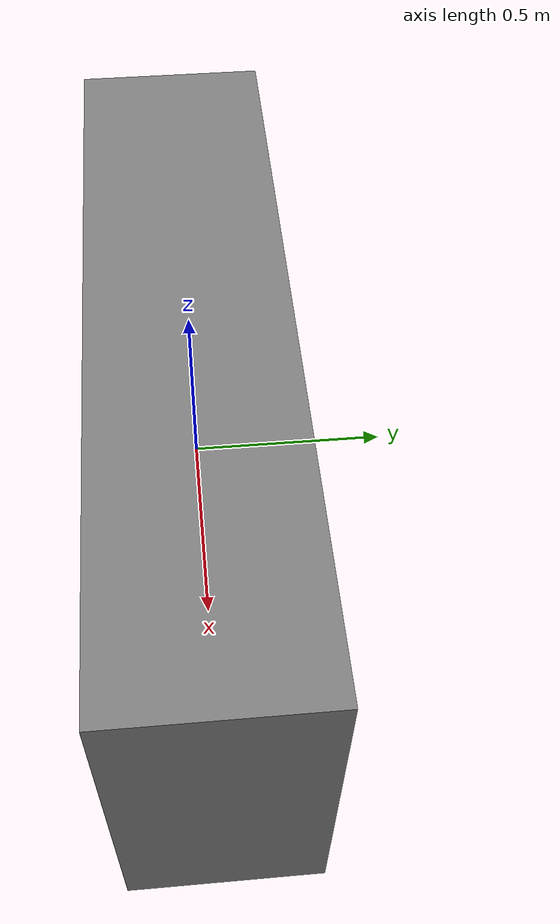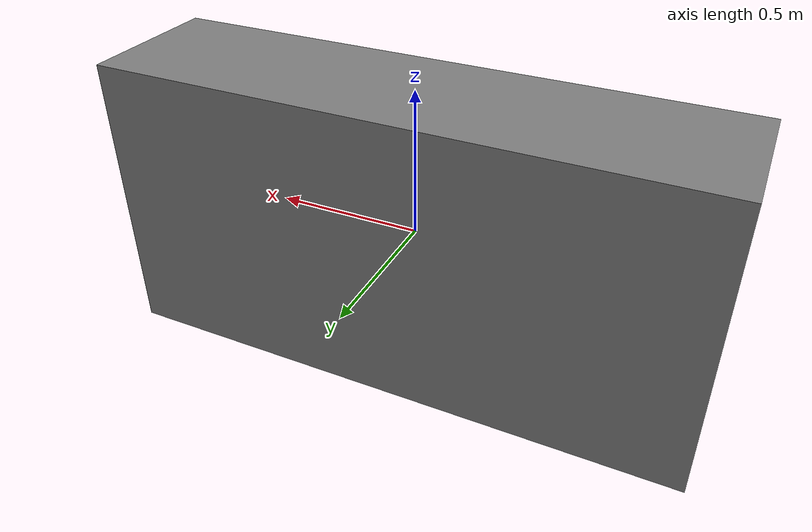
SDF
<?xml version="1.0"?>
<sdf version="1.7">
  <model name="FixedObstaclesV1.0">
  <!-- Set the obstacle map at the center -->
    <pose>0 0 0 0 0 0</pose>

     <!-- Scale may need to be modified to be correct -->
    <scale>10 10 2</scale>

    <!-- Obstacles are static -->
    <static>true</static>
    <link name="link">
      <visual name="visual">
        <geometry>
          <box>
            <size>2 0.5 1</size>
          </box>
        </geometry>
        <material>
          <ambient>0.5 0.5 0.5 1</ambient>
        </material>
      </visual>
      <collision name="collision">
        <geometry>
          <box>
            <size>2 0.5 1</size>
          </box>
        </geometry>
      </collision>
    </link>
  </model>
</sdf>
